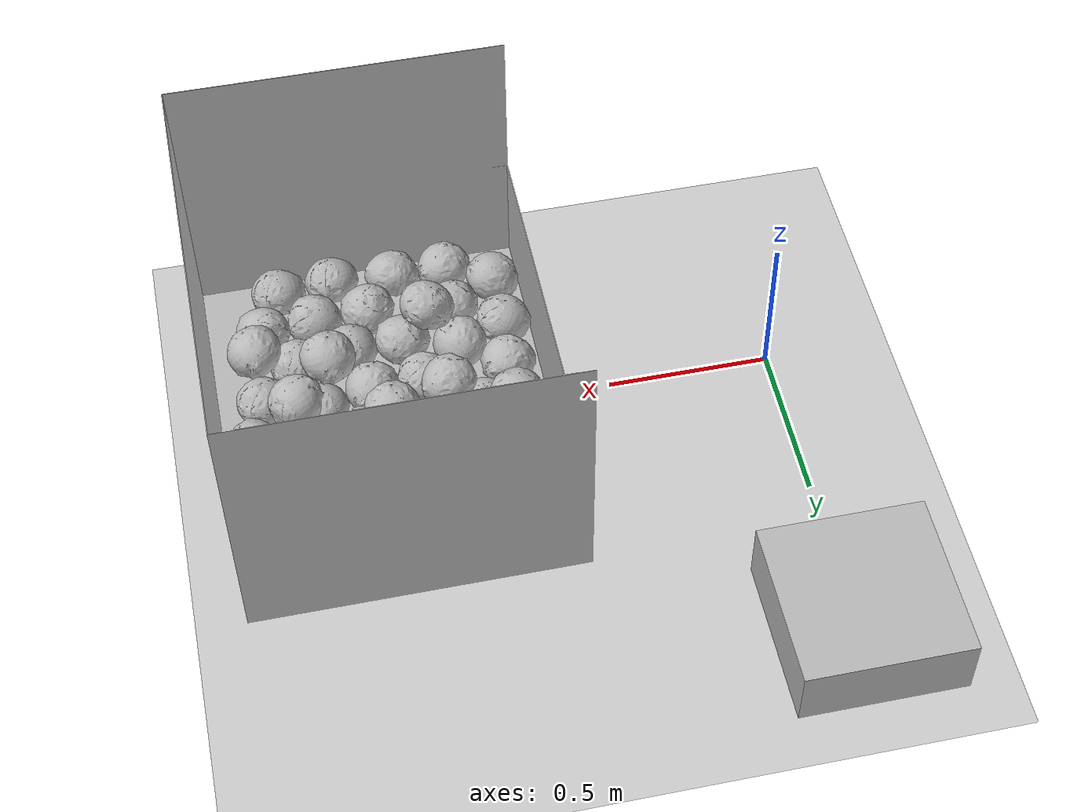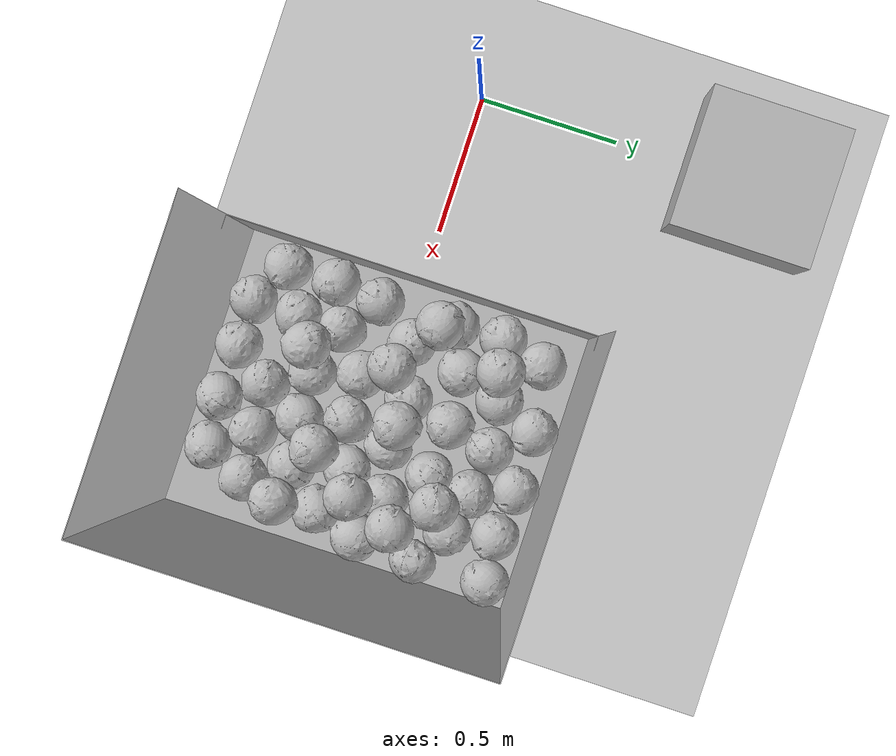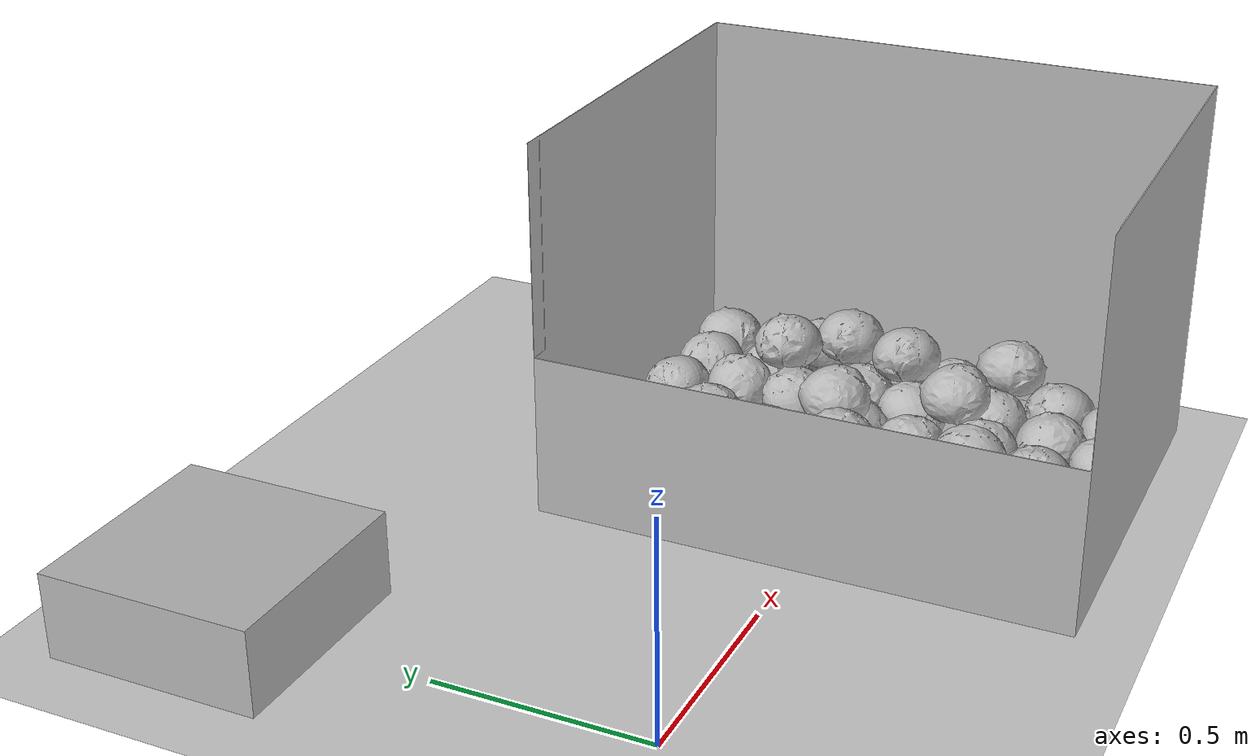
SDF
<sdf version="1.6">
 <world name="default">
  <model name="ground_plane">
   <static>1</static>
   <link name="link">
    <collision name="collision">
     <geometry><plane><normal>0 0 1</normal><size>100 100</size></plane></geometry>
     <surface>
      <contact><collide_bitmask>65535</collide_bitmask></contact>
      <friction><ode><mu>100</mu><mu2>50</mu2></ode></friction>
     </surface>
    </collision>
    <visual name="visual">
     <cast_shadows>0</cast_shadows>
     <geometry><plane><normal>0 0 1</normal><size>100 100</size></plane></geometry>
     <material>
      <script><uri>file://media/materials/scripts/gazebo.material</uri><name>Gazebo/Grey</name></script>
     </material>
    </visual>
   </link>
  </model>
  <light name="sun" type="directional">
   <pose>0 0 10 0 -0 0</pose>
   <diffuse>0.8 0.8 0.8 1</diffuse>
   <specular>0.2 0.2 0.2 1</specular>
   <attenuation>
    <range>1000</range>
    <constant>0.9</constant>
    <linear>0.01</linear>
    <quadratic>0.001</quadratic>
   </attenuation>
   <direction>-0.5 0.1 -0.9</direction>
  </light>
  <model name="mytable">
   <static>1</static>
   <link name="link">
    <inertial>
     <mass>1</mass>
     <inertia><ixx>0.083</ixx><ixy>0</ixy><ixz>0</ixz><iyy>0.083</iyy><iyz>0</iyz><izz>0.083</izz></inertia>
    </inertial>
    <collision name="collision"><geometry><box><size>0.5 0.5 0.2</size></box></geometry></collision>
    <visual name="visual"><geometry><box><size>0.5 0.5 0.2</size></box></geometry></visual>
   </link>
   <pose>-0 1 0.1 0 -0 0</pose>
  </model>
  <model name="container">
   <static>1</static>
   <link name="link">
    <inertial>
     <mass>1</mass>
     <inertia><ixx>1</ixx><ixy>0</ixy><ixz>0</ixz><iyy>1</iyy><iyz>0</iyz><izz>1</izz></inertia>
    </inertial>
    <collision name="collision">
     <geometry>
      <mesh>
       <scale>0.001 0.001 0.001</scale>
       <uri>model://big_container_open/big_container_open_meshlab.dae</uri>
      </mesh>
     </geometry>
     <surface>
      <friction><ode><mu>0.6</mu><mu2>0.6</mu2></ode></friction>
      <contact><ode><max_vel>0.1</max_vel><min_depth>0.0001</min_depth></ode></contact>
     </surface>
    </collision>
    <visual name="visual">
     <geometry>
      <mesh>
       <scale>0.001 0.001 0.001</scale>
       <uri>model://big_container_open/big_container_open_meshlab.dae</uri>
      </mesh>
     </geometry>
    </visual>
   </link>
   <pose>1.2 0 0 0 0 -1.57</pose>
  </model>
  <gravity>0 0 -9.8</gravity>
  <magnetic_field>6e-06 2.3e-05 -4.2e-05</magnetic_field>
  <atmosphere type="adiabatic"/>
  <physics name="default_physics" default="0" type="ode">
   <max_step_size>0.001</max_step_size>
   <real_time_factor>1</real_time_factor>
   <real_time_update_rate>1000</real_time_update_rate>
  </physics>
  <scene><ambient>0.4 0.4 0.4 1</ambient><background>0.7 0.7 0.7 1</background><shadows>1</shadows></scene>
  <audio><device>default</device></audio>
  <spherical_coordinates>
   <surface_model>EARTH_WGS84</surface_model>
   <latitude_deg>0</latitude_deg>
   <longitude_deg>0</longitude_deg>
   <elevation>0</elevation>
   <heading_deg>0</heading_deg>
  </spherical_coordinates>
  <model name="cabbage_1">
   <link name="link">
    <inertial>
     <mass>1</mass>
     <inertia><ixx>0.001</ixx><ixy>0</ixy><ixz>0</ixz><iyy>0.001</iyy><iyz>0</iyz><izz>0.001</izz></inertia>
    </inertial>
    <collision name="collision">
     <geometry>
      <mesh><scale>0.0015 0.0015 0.0015</scale><uri>model://cabbage/cabbage_single.dae</uri></mesh>
     </geometry>
     <surface>
      <friction><ode><mu>0.8</mu><mu2>0.8</mu2></ode></friction>
      <contact><ode><max_vel>0.1</max_vel><min_depth>0.0001</min_depth></ode></contact>
     </surface>
    </collision>
    <visual name="visual">
     <geometry>
      <mesh><scale>0.0015 0.0015 0.0015</scale><uri>model://cabbage/cabbage_single.dae</uri></mesh>
     </geometry>
     <material><script><uri>model://cabbage/texture.material</uri><name>CabbageTexture</name></script></material>
    </visual>
   </link>
   <pose>1.56645 -0.082913 0.008326 1.79305 0.062438 -0.553552</pose>
  </model>
  <model name="cabbage_2">
   <link name="link">
    <inertial>
     <mass>1</mass>
     <inertia><ixx>0.001</ixx><ixy>0</ixy><ixz>0</ixz><iyy>0.001</iyy><iyz>0</iyz><izz>0.001</izz></inertia>
    </inertial>
    <collision name="collision">
     <geometry>
      <mesh><scale>0.0015 0.0015 0.0015</scale><uri>model://cabbage/cabbage_single.dae</uri></mesh>
     </geometry>
     <surface>
      <friction><ode><mu>0.8</mu><mu2>0.8</mu2></ode></friction>
      <contact><ode><max_vel>0.1</max_vel><min_depth>0.0001</min_depth></ode></contact>
     </surface>
    </collision>
    <visual name="visual">
     <geometry>
      <mesh><scale>0.0015 0.0015 0.0015</scale><uri>model://cabbage/cabbage_single.dae</uri></mesh>
     </geometry>
     <material><script><uri>model://cabbage/texture.material</uri><name>CabbageTexture</name></script></material>
    </visual>
   </link>
   <pose>0.838938 0.490247 0.005149 1.47234 -0.122549 -1.18731</pose>
  </model>
  <model name="cabbage_3">
   <link name="link">
    <inertial>
     <mass>1</mass>
     <inertia><ixx>0.001</ixx><ixy>0</ixy><ixz>0</ixz><iyy>0.001</iyy><iyz>0</iyz><izz>0.001</izz></inertia>
    </inertial>
    <collision name="collision">
     <geometry>
      <mesh><scale>0.0015 0.0015 0.0015</scale><uri>model://cabbage/cabbage_single.dae</uri></mesh>
     </geometry>
     <surface>
      <friction><ode><mu>0.8</mu><mu2>0.8</mu2></ode></friction>
      <contact><ode><max_vel>0.1</max_vel><min_depth>0.0001</min_depth></ode></contact>
     </surface>
    </collision>
    <visual name="visual">
     <geometry>
      <mesh><scale>0.0015 0.0015 0.0015</scale><uri>model://cabbage/cabbage_single.dae</uri></mesh>
     </geometry>
     <material><script><uri>model://cabbage/texture.material</uri><name>CabbageTexture</name></script></material>
    </visual>
   </link>
   <pose>1.27326 0.078551 0.004448 1.51816 -0.060117 0.982329</pose>
  </model>
  <model name="cabbage_4">
   <link name="link">
    <inertial>
     <mass>1</mass>
     <inertia><ixx>0.001</ixx><ixy>0</ixy><ixz>0</ixz><iyy>0.001</iyy><iyz>0</iyz><izz>0.001</izz></inertia>
    </inertial>
    <collision name="collision">
     <geometry>
      <mesh><scale>0.0015 0.0015 0.0015</scale><uri>model://cabbage/cabbage_single.dae</uri></mesh>
     </geometry>
     <surface>
      <friction><ode><mu>0.8</mu><mu2>0.8</mu2></ode></friction>
      <contact><ode><max_vel>0.1</max_vel><min_depth>0.0001</min_depth></ode></contact>
     </surface>
    </collision>
    <visual name="visual">
     <geometry>
      <mesh><scale>0.0015 0.0015 0.0015</scale><uri>model://cabbage/cabbage_single.dae</uri></mesh>
     </geometry>
     <material><script><uri>model://cabbage/texture.material</uri><name>CabbageTexture</name></script></material>
    </visual>
   </link>
   <pose>0.810137 0.168603 0.006687 1.66431 -0.085139 -0.765313</pose>
  </model>
  <model name="cabbage_5">
   <link name="link">
    <inertial>
     <mass>1</mass>
     <inertia><ixx>0.001</ixx><ixy>0</ixy><ixz>0</ixz><iyy>0.001</iyy><iyz>0</iyz><izz>0.001</izz></inertia>
    </inertial>
    <collision name="collision">
     <geometry>
      <mesh><scale>0.0015 0.0015 0.0015</scale><uri>model://cabbage/cabbage_single.dae</uri></mesh>
     </geometry>
     <surface>
      <friction><ode><mu>0.8</mu><mu2>0.8</mu2></ode></friction>
      <contact><ode><max_vel>0.1</max_vel><min_depth>0.0001</min_depth></ode></contact>
     </surface>
    </collision>
    <visual name="visual">
     <geometry>
      <mesh><scale>0.0015 0.0015 0.0015</scale><uri>model://cabbage/cabbage_single.dae</uri></mesh>
     </geometry>
     <material><script><uri>model://cabbage/texture.material</uri><name>CabbageTexture</name></script></material>
    </visual>
   </link>
   <pose>1.37315 -0.408369 0.011233 1.51048 -0.306398 -1.19735</pose>
  </model>
  <model name="cabbage_6">
   <link name="link">
    <inertial>
     <mass>1</mass>
     <inertia><ixx>0.001</ixx><ixy>0</ixy><ixz>0</ixz><iyy>0.001</iyy><iyz>0</iyz><izz>0.001</izz></inertia>
    </inertial>
    <collision name="collision">
     <geometry>
      <mesh><scale>0.0015 0.0015 0.0015</scale><uri>model://cabbage/cabbage_single.dae</uri></mesh>
     </geometry>
     <surface>
      <friction><ode><mu>0.8</mu><mu2>0.8</mu2></ode></friction>
      <contact><ode><max_vel>0.1</max_vel><min_depth>0.0001</min_depth></ode></contact>
     </surface>
    </collision>
    <visual name="visual">
     <geometry>
      <mesh><scale>0.0015 0.0015 0.0015</scale><uri>model://cabbage/cabbage_single.dae</uri></mesh>
     </geometry>
     <material><script><uri>model://cabbage/texture.material</uri><name>CabbageTexture</name></script></material>
    </visual>
   </link>
   <pose>1.38268 -0.017162 0.012705 1.90545 0.120917 0.062827</pose>
  </model>
  <model name="cabbage_7">
   <link name="link">
    <inertial>
     <mass>1</mass>
     <inertia><ixx>0.001</ixx><ixy>0</ixy><ixz>0</ixz><iyy>0.001</iyy><iyz>0</iyz><izz>0.001</izz></inertia>
    </inertial>
    <collision name="collision">
     <geometry>
      <mesh><scale>0.0015 0.0015 0.0015</scale><uri>model://cabbage/cabbage_single.dae</uri></mesh>
     </geometry>
     <surface>
      <friction><ode><mu>0.8</mu><mu2>0.8</mu2></ode></friction>
      <contact><ode><max_vel>0.1</max_vel><min_depth>0.0001</min_depth></ode></contact>
     </surface>
    </collision>
    <visual name="visual">
     <geometry>
      <mesh><scale>0.0015 0.0015 0.0015</scale><uri>model://cabbage/cabbage_single.dae</uri></mesh>
     </geometry>
     <material><script><uri>model://cabbage/texture.material</uri><name>CabbageTexture</name></script></material>
    </visual>
   </link>
   <pose>1.59172 0.056704 0.012336 1.63739 0.297259 0.645975</pose>
  </model>
  <model name="cabbage_8">
   <link name="link">
    <inertial>
     <mass>1</mass>
     <inertia><ixx>0.001</ixx><ixy>0</ixy><ixz>0</ixz><iyy>0.001</iyy><iyz>0</iyz><izz>0.001</izz></inertia>
    </inertial>
    <collision name="collision">
     <geometry>
      <mesh><scale>0.0015 0.0015 0.0015</scale><uri>model://cabbage/cabbage_single.dae</uri></mesh>
     </geometry>
     <surface>
      <friction><ode><mu>0.8</mu><mu2>0.8</mu2></ode></friction>
      <contact><ode><max_vel>0.1</max_vel><min_depth>0.0001</min_depth></ode></contact>
     </surface>
    </collision>
    <visual name="visual">
     <geometry>
      <mesh><scale>0.0015 0.0015 0.0015</scale><uri>model://cabbage/cabbage_single.dae</uri></mesh>
     </geometry>
     <material><script><uri>model://cabbage/texture.material</uri><name>CabbageTexture</name></script></material>
    </visual>
   </link>
   <pose>1.08687 0.097042 0.005726 1.43544 -0.127997 2.98147</pose>
  </model>
  <model name="cabbage_9">
   <link name="link">
    <inertial>
     <mass>1</mass>
     <inertia><ixx>0.001</ixx><ixy>0</ixy><ixz>0</ixz><iyy>0.001</iyy><iyz>0</iyz><izz>0.001</izz></inertia>
    </inertial>
    <collision name="collision">
     <geometry>
      <mesh><scale>0.0015 0.0015 0.0015</scale><uri>model://cabbage/cabbage_single.dae</uri></mesh>
     </geometry>
     <surface>
      <friction><ode><mu>0.8</mu><mu2>0.8</mu2></ode></friction>
      <contact><ode><max_vel>0.1</max_vel><min_depth>0.0001</min_depth></ode></contact>
     </surface>
    </collision>
    <visual name="visual">
     <geometry>
      <mesh><scale>0.0015 0.0015 0.0015</scale><uri>model://cabbage/cabbage_single.dae</uri></mesh>
     </geometry>
     <material><script><uri>model://cabbage/texture.material</uri><name>CabbageTexture</name></script></material>
    </visual>
   </link>
   <pose>0.910525 -0.222832 0.016099 1.4721 -0.470082 -2.46178</pose>
  </model>
  <model name="cabbage_10">
   <link name="link">
    <inertial>
     <mass>1</mass>
     <inertia><ixx>0.001</ixx><ixy>0</ixy><ixz>0</ixz><iyy>0.001</iyy><iyz>0</iyz><izz>0.001</izz></inertia>
    </inertial>
    <collision name="collision">
     <geometry>
      <mesh><scale>0.0015 0.0015 0.0015</scale><uri>model://cabbage/cabbage_single.dae</uri></mesh>
     </geometry>
     <surface>
      <friction><ode><mu>0.8</mu><mu2>0.8</mu2></ode></friction>
      <contact><ode><max_vel>0.1</max_vel><min_depth>0.0001</min_depth></ode></contact>
     </surface>
    </collision>
    <visual name="visual">
     <geometry>
      <mesh><scale>0.0015 0.0015 0.0015</scale><uri>model://cabbage/cabbage_single.dae</uri></mesh>
     </geometry>
     <material><script><uri>model://cabbage/texture.material</uri><name>CabbageTexture</name></script></material>
    </visual>
   </link>
   <pose>1.17425 -0.411081 0.013846 1.92232 0.141419 1.61423</pose>
  </model>
  <model name="cabbage_11">
   <link name="link">
    <inertial>
     <mass>1</mass>
     <inertia><ixx>0.001</ixx><ixy>0</ixy><ixz>0</ixz><iyy>0.001</iyy><iyz>0</iyz><izz>0.001</izz></inertia>
    </inertial>
    <collision name="collision">
     <geometry>
      <mesh><scale>0.0015 0.0015 0.0015</scale><uri>model://cabbage/cabbage_single.dae</uri></mesh>
     </geometry>
     <surface>
      <friction><ode><mu>0.8</mu><mu2>0.8</mu2></ode></friction>
      <contact><ode><max_vel>0.1</max_vel><min_depth>0.0001</min_depth></ode></contact>
     </surface>
    </collision>
    <visual name="visual">
     <geometry>
      <mesh><scale>0.0015 0.0015 0.0015</scale><uri>model://cabbage/cabbage_single.dae</uri></mesh>
     </geometry>
     <material><script><uri>model://cabbage/texture.material</uri><name>CabbageTexture</name></script></material>
    </visual>
   </link>
   <pose>1.45146 0.113368 0.003622 1.57171 0.00319 -2.36476</pose>
  </model>
  <model name="cabbage_12">
   <link name="link">
    <inertial>
     <mass>1</mass>
     <inertia><ixx>0.001</ixx><ixy>0</ixy><ixz>0</ixz><iyy>0.001</iyy><iyz>0</iyz><izz>0.001</izz></inertia>
    </inertial>
    <collision name="collision">
     <geometry>
      <mesh><scale>0.0015 0.0015 0.0015</scale><uri>model://cabbage/cabbage_single.dae</uri></mesh>
     </geometry>
     <surface>
      <friction><ode><mu>0.8</mu><mu2>0.8</mu2></ode></friction>
      <contact><ode><max_vel>0.1</max_vel><min_depth>0.0001</min_depth></ode></contact>
     </surface>
    </collision>
    <visual name="visual">
     <geometry>
      <mesh><scale>0.0015 0.0015 0.0015</scale><uri>model://cabbage/cabbage_single.dae</uri></mesh>
     </geometry>
     <material><script><uri>model://cabbage/texture.material</uri><name>CabbageTexture</name></script></material>
    </visual>
   </link>
   <pose>1.03998 -0.28016 0.118749 1.38305 -0.286936 0.92174</pose>
  </model>
  <model name="cabbage_13">
   <link name="link">
    <inertial>
     <mass>1</mass>
     <inertia><ixx>0.001</ixx><ixy>0</ixy><ixz>0</ixz><iyy>0.001</iyy><iyz>0</iyz><izz>0.001</izz></inertia>
    </inertial>
    <collision name="collision">
     <geometry>
      <mesh><scale>0.0015 0.0015 0.0015</scale><uri>model://cabbage/cabbage_single.dae</uri></mesh>
     </geometry>
     <surface>
      <friction><ode><mu>0.8</mu><mu2>0.8</mu2></ode></friction>
      <contact><ode><max_vel>0.1</max_vel><min_depth>0.0001</min_depth></ode></contact>
     </surface>
    </collision>
    <visual name="visual">
     <geometry>
      <mesh><scale>0.0015 0.0015 0.0015</scale><uri>model://cabbage/cabbage_single.dae</uri></mesh>
     </geometry>
     <material><script><uri>model://cabbage/texture.material</uri><name>CabbageTexture</name></script></material>
    </visual>
   </link>
   <pose>1.00117 0.393056 0.004015 1.54193 -0.012475 2.44082</pose>
  </model>
  <model name="cabbage_14">
   <link name="link">
    <inertial>
     <mass>1</mass>
     <inertia><ixx>0.001</ixx><ixy>0</ixy><ixz>0</ixz><iyy>0.001</iyy><iyz>0</iyz><izz>0.001</izz></inertia>
    </inertial>
    <collision name="collision">
     <geometry>
      <mesh><scale>0.0015 0.0015 0.0015</scale><uri>model://cabbage/cabbage_single.dae</uri></mesh>
     </geometry>
     <surface>
      <friction><ode><mu>0.8</mu><mu2>0.8</mu2></ode></friction>
      <contact><ode><max_vel>0.1</max_vel><min_depth>0.0001</min_depth></ode></contact>
     </surface>
    </collision>
    <visual name="visual">
     <geometry>
      <mesh><scale>0.0015 0.0015 0.0015</scale><uri>model://cabbage/cabbage_single.dae</uri></mesh>
     </geometry>
     <material><script><uri>model://cabbage/texture.material</uri><name>CabbageTexture</name></script></material>
    </visual>
   </link>
   <pose>0.805386 -0.114427 0.005067 1.58857 0.08195 2.9965</pose>
  </model>
  <model name="cabbage_15">
   <link name="link">
    <inertial>
     <mass>1</mass>
     <inertia><ixx>0.001</ixx><ixy>0</ixy><ixz>0</ixz><iyy>0.001</iyy><iyz>0</iyz><izz>0.001</izz></inertia>
    </inertial>
    <collision name="collision">
     <geometry>
      <mesh><scale>0.0015 0.0015 0.0015</scale><uri>model://cabbage/cabbage_single.dae</uri></mesh>
     </geometry>
     <surface>
      <friction><ode><mu>0.8</mu><mu2>0.8</mu2></ode></friction>
      <contact><ode><max_vel>0.1</max_vel><min_depth>0.0001</min_depth></ode></contact>
     </surface>
    </collision>
    <visual name="visual">
     <geometry>
      <mesh><scale>0.0015 0.0015 0.0015</scale><uri>model://cabbage/cabbage_single.dae</uri></mesh>
     </geometry>
     <material><script><uri>model://cabbage/texture.material</uri><name>CabbageTexture</name></script></material>
    </visual>
   </link>
   <pose>1.27875 -0.249448 0.004996 1.58999 -0.051802 -0.159704</pose>
  </model>
  <model name="cabbage_16">
   <link name="link">
    <inertial>
     <mass>1</mass>
     <inertia><ixx>0.001</ixx><ixy>0</ixy><ixz>0</ixz><iyy>0.001</iyy><iyz>0</iyz><izz>0.001</izz></inertia>
    </inertial>
    <collision name="collision">
     <geometry>
      <mesh><scale>0.0015 0.0015 0.0015</scale><uri>model://cabbage/cabbage_single.dae</uri></mesh>
     </geometry>
     <surface>
      <friction><ode><mu>0.8</mu><mu2>0.8</mu2></ode></friction>
      <contact><ode><max_vel>0.1</max_vel><min_depth>0.0001</min_depth></ode></contact>
     </surface>
    </collision>
    <visual name="visual">
     <geometry>
      <mesh><scale>0.0015 0.0015 0.0015</scale><uri>model://cabbage/cabbage_single.dae</uri></mesh>
     </geometry>
     <material><script><uri>model://cabbage/texture.material</uri><name>CabbageTexture</name></script></material>
    </visual>
   </link>
   <pose>1.44064 -0.007221 0.124565 1.12629 0.293234 -0.537433</pose>
  </model>
  <model name="cabbage_17">
   <link name="link">
    <inertial>
     <mass>1</mass>
     <inertia><ixx>0.001</ixx><ixy>0</ixy><ixz>0</ixz><iyy>0.001</iyy><iyz>0</iyz><izz>0.001</izz></inertia>
    </inertial>
    <collision name="collision">
     <geometry>
      <mesh><scale>0.0015 0.0015 0.0015</scale><uri>model://cabbage/cabbage_single.dae</uri></mesh>
     </geometry>
     <surface>
      <friction><ode><mu>0.8</mu><mu2>0.8</mu2></ode></friction>
      <contact><ode><max_vel>0.1</max_vel><min_depth>0.0001</min_depth></ode></contact>
     </surface>
    </collision>
    <visual name="visual">
     <geometry>
      <mesh><scale>0.0015 0.0015 0.0015</scale><uri>model://cabbage/cabbage_single.dae</uri></mesh>
     </geometry>
     <material><script><uri>model://cabbage/texture.material</uri><name>CabbageTexture</name></script></material>
    </visual>
   </link>
   <pose>1.50631 0.171724 0.113177 1.31722 0.269286 -0.634055</pose>
  </model>
  <model name="cabbage_18">
   <link name="link">
    <inertial>
     <mass>1</mass>
     <inertia><ixx>0.001</ixx><ixy>0</ixy><ixz>0</ixz><iyy>0.001</iyy><iyz>0</iyz><izz>0.001</izz></inertia>
    </inertial>
    <collision name="collision">
     <geometry>
      <mesh><scale>0.0015 0.0015 0.0015</scale><uri>model://cabbage/cabbage_single.dae</uri></mesh>
     </geometry>
     <surface>
      <friction><ode><mu>0.8</mu><mu2>0.8</mu2></ode></friction>
      <contact><ode><max_vel>0.1</max_vel><min_depth>0.0001</min_depth></ode></contact>
     </surface>
    </collision>
    <visual name="visual">
     <geometry>
      <mesh><scale>0.0015 0.0015 0.0015</scale><uri>model://cabbage/cabbage_single.dae</uri></mesh>
     </geometry>
     <material><script><uri>model://cabbage/texture.material</uri><name>CabbageTexture</name></script></material>
    </visual>
   </link>
   <pose>0.948133 0.241549 0.003898 1.60377 0.007885 0.089148</pose>
  </model>
  <model name="cabbage_19">
   <link name="link">
    <inertial>
     <mass>1</mass>
     <inertia><ixx>0.001</ixx><ixy>0</ixy><ixz>0</ixz><iyy>0.001</iyy><iyz>0</iyz><izz>0.001</izz></inertia>
    </inertial>
    <collision name="collision">
     <geometry>
      <mesh><scale>0.0015 0.0015 0.0015</scale><uri>model://cabbage/cabbage_single.dae</uri></mesh>
     </geometry>
     <surface>
      <friction><ode><mu>0.8</mu><mu2>0.8</mu2></ode></friction>
      <contact><ode><max_vel>0.1</max_vel><min_depth>0.0001</min_depth></ode></contact>
     </surface>
    </collision>
    <visual name="visual">
     <geometry>
      <mesh><scale>0.0015 0.0015 0.0015</scale><uri>model://cabbage/cabbage_single.dae</uri></mesh>
     </geometry>
     <material><script><uri>model://cabbage/texture.material</uri><name>CabbageTexture</name></script></material>
    </visual>
   </link>
   <pose>0.792016 0.360172 0.012959 1.20901 -0.063196 2.95369</pose>
  </model>
  <model name="cabbage_20">
   <link name="link">
    <inertial>
     <mass>1</mass>
     <inertia><ixx>0.001</ixx><ixy>0</ixy><ixz>0</ixz><iyy>0.001</iyy><iyz>0</iyz><izz>0.001</izz></inertia>
    </inertial>
    <collision name="collision">
     <geometry>
      <mesh><scale>0.0015 0.0015 0.0015</scale><uri>model://cabbage/cabbage_single.dae</uri></mesh>
     </geometry>
     <surface>
      <friction><ode><mu>0.8</mu><mu2>0.8</mu2></ode></friction>
      <contact><ode><max_vel>0.1</max_vel><min_depth>0.0001</min_depth></ode></contact>
     </surface>
    </collision>
    <visual name="visual">
     <geometry>
      <mesh><scale>0.0015 0.0015 0.0015</scale><uri>model://cabbage/cabbage_single.dae</uri></mesh>
     </geometry>
     <material><script><uri>model://cabbage/texture.material</uri><name>CabbageTexture</name></script></material>
    </visual>
   </link>
   <pose>1.28684 -0.512134 0.015914 1.9748 0.164571 -0.192912</pose>
  </model>
  <model name="cabbage_13_clone">
   <link name="link">
    <inertial>
     <mass>1</mass>
     <inertia><ixx>0.001</ixx><ixy>0</ixy><ixz>0</ixz><iyy>0.001</iyy><iyz>0</iyz><izz>0.001</izz></inertia>
    </inertial>
    <collision name="collision">
     <geometry>
      <mesh><scale>0.0015 0.0015 0.0015</scale><uri>model://cabbage/cabbage_single.dae</uri></mesh>
     </geometry>
     <surface>
      <friction><ode><mu>0.8</mu><mu2>0.8</mu2></ode></friction>
      <contact><ode><max_vel>0.1</max_vel><min_depth>0.0001</min_depth></ode></contact>
     </surface>
    </collision>
    <visual name="visual">
     <geometry>
      <mesh><scale>0.0015 0.0015 0.0015</scale><uri>model://cabbage/cabbage_single.dae</uri></mesh>
     </geometry>
     <material><script><uri>model://cabbage/texture.material</uri><name>CabbageTexture</name></script></material>
    </visual>
   </link>
   <pose>1.46807 0.514818 0.009975 1.38136 0.226044 1.99755</pose>
  </model>
  <model name="cabbage_13_clone_0">
   <link name="link">
    <inertial>
     <mass>1</mass>
     <inertia><ixx>0.001</ixx><ixy>0</ixy><ixz>0</ixz><iyy>0.001</iyy><iyz>0</iyz><izz>0.001</izz></inertia>
    </inertial>
    <collision name="collision">
     <geometry>
      <mesh><scale>0.0015 0.0015 0.0015</scale><uri>model://cabbage/cabbage_single.dae</uri></mesh>
     </geometry>
     <surface>
      <friction><ode><mu>0.8</mu><mu2>0.8</mu2></ode></friction>
      <contact><ode><max_vel>0.1</max_vel><min_depth>0.0001</min_depth></ode></contact>
     </surface>
    </collision>
    <visual name="visual">
     <geometry>
      <mesh><scale>0.0015 0.0015 0.0015</scale><uri>model://cabbage/cabbage_single.dae</uri></mesh>
     </geometry>
     <material><script><uri>model://cabbage/texture.material</uri><name>CabbageTexture</name></script></material>
    </visual>
   </link>
   <pose>1.59886 0.534497 0.010938 1.52765 0.326455 0.307467</pose>
  </model>
  <model name="cabbage_13_clone_1">
   <link name="link">
    <inertial>
     <mass>1</mass>
     <inertia><ixx>0.001</ixx><ixy>0</ixy><ixz>0</ixz><iyy>0.001</iyy><iyz>0</iyz><izz>0.001</izz></inertia>
    </inertial>
    <collision name="collision">
     <geometry>
      <mesh><scale>0.0015 0.0015 0.0015</scale><uri>model://cabbage/cabbage_single.dae</uri></mesh>
     </geometry>
     <surface>
      <friction><ode><mu>0.8</mu><mu2>0.8</mu2></ode></friction>
      <contact><ode><max_vel>0.1</max_vel><min_depth>0.0001</min_depth></ode></contact>
     </surface>
    </collision>
    <visual name="visual">
     <geometry>
      <mesh><scale>0.0015 0.0015 0.0015</scale><uri>model://cabbage/cabbage_single.dae</uri></mesh>
     </geometry>
     <material><script><uri>model://cabbage/texture.material</uri><name>CabbageTexture</name></script></material>
    </visual>
   </link>
   <pose>0.810536 -0.46166 0.016668 1.28622 0.363 2.18698</pose>
  </model>
  <model name="cabbage_13_clone_2">
   <link name="link">
    <inertial>
     <mass>1</mass>
     <inertia><ixx>0.001</ixx><ixy>0</ixy><ixz>0</ixz><iyy>0.001</iyy><iyz>0</iyz><izz>0.001</izz></inertia>
    </inertial>
    <collision name="collision">
     <geometry>
      <mesh><scale>0.0015 0.0015 0.0015</scale><uri>model://cabbage/cabbage_single.dae</uri></mesh>
     </geometry>
     <surface>
      <friction><ode><mu>0.8</mu><mu2>0.8</mu2></ode></friction>
      <contact><ode><max_vel>0.1</max_vel><min_depth>0.0001</min_depth></ode></contact>
     </surface>
    </collision>
    <visual name="visual">
     <geometry>
      <mesh><scale>0.0015 0.0015 0.0015</scale><uri>model://cabbage/cabbage_single.dae</uri></mesh>
     </geometry>
     <material><script><uri>model://cabbage/texture.material</uri><name>CabbageTexture</name></script></material>
    </visual>
   </link>
   <pose>0.987841 0.016608 0.109103 1.54007 -0.285029 2.66066</pose>
  </model>
  <model name="cabbage_13_clone_3">
   <link name="link">
    <inertial>
     <mass>1</mass>
     <inertia><ixx>0.001</ixx><ixy>0</ixy><ixz>0</ixz><iyy>0.001</iyy><iyz>0</iyz><izz>0.001</izz></inertia>
    </inertial>
    <collision name="collision">
     <geometry>
      <mesh><scale>0.0015 0.0015 0.0015</scale><uri>model://cabbage/cabbage_single.dae</uri></mesh>
     </geometry>
     <surface>
      <friction><ode><mu>0.8</mu><mu2>0.8</mu2></ode></friction>
      <contact><ode><max_vel>0.1</max_vel><min_depth>0.0001</min_depth></ode></contact>
     </surface>
    </collision>
    <visual name="visual">
     <geometry>
      <mesh><scale>0.0015 0.0015 0.0015</scale><uri>model://cabbage/cabbage_single.dae</uri></mesh>
     </geometry>
     <material><script><uri>model://cabbage/texture.material</uri><name>CabbageTexture</name></script></material>
    </visual>
   </link>
   <pose>1.10397 -0.513657 0.011022 1.2453 -0.151714 2.31901</pose>
  </model>
  <model name="cabbage_13_clone_4">
   <link name="link">
    <inertial>
     <mass>1</mass>
     <inertia><ixx>0.001</ixx><ixy>0</ixy><ixz>0</ixz><iyy>0.001</iyy><iyz>0</iyz><izz>0.001</izz></inertia>
    </inertial>
    <collision name="collision">
     <geometry>
      <mesh><scale>0.0015 0.0015 0.0015</scale><uri>model://cabbage/cabbage_single.dae</uri></mesh>
     </geometry>
     <surface>
      <friction><ode><mu>0.8</mu><mu2>0.8</mu2></ode></friction>
      <contact><ode><max_vel>0.1</max_vel><min_depth>0.0001</min_depth></ode></contact>
     </surface>
    </collision>
    <visual name="visual">
     <geometry>
      <mesh><scale>0.0015 0.0015 0.0015</scale><uri>model://cabbage/cabbage_single.dae</uri></mesh>
     </geometry>
     <material><script><uri>model://cabbage/texture.material</uri><name>CabbageTexture</name></script></material>
    </visual>
   </link>
   <pose>1.10769 -0.26074 0.004318 1.52971 0.015879 1.58381</pose>
  </model>
  <model name="cabbage_13_clone_5">
   <link name="link">
    <inertial>
     <mass>1</mass>
     <inertia><ixx>0.001</ixx><ixy>0</ixy><ixz>0</ixz><iyy>0.001</iyy><iyz>0</iyz><izz>0.001</izz></inertia>
    </inertial>
    <collision name="collision">
     <geometry>
      <mesh><scale>0.0015 0.0015 0.0015</scale><uri>model://cabbage/cabbage_single.dae</uri></mesh>
     </geometry>
     <surface>
      <friction><ode><mu>0.8</mu><mu2>0.8</mu2></ode></friction>
      <contact><ode><max_vel>0.1</max_vel><min_depth>0.0001</min_depth></ode></contact>
     </surface>
    </collision>
    <visual name="visual">
     <geometry>
      <mesh><scale>0.0015 0.0015 0.0015</scale><uri>model://cabbage/cabbage_single.dae</uri></mesh>
     </geometry>
     <material><script><uri>model://cabbage/texture.material</uri><name>CabbageTexture</name></script></material>
    </visual>
   </link>
   <pose>0.814539 0.143601 0.137768 1.50707 0.329322 -1.44668</pose>
  </model>
  <model name="cabbage_13_clone_6">
   <link name="link">
    <inertial>
     <mass>1</mass>
     <inertia><ixx>0.001</ixx><ixy>0</ixy><ixz>0</ixz><iyy>0.001</iyy><iyz>0</iyz><izz>0.001</izz></inertia>
    </inertial>
    <collision name="collision">
     <geometry>
      <mesh><scale>0.0015 0.0015 0.0015</scale><uri>model://cabbage/cabbage_single.dae</uri></mesh>
     </geometry>
     <surface>
      <friction><ode><mu>0.8</mu><mu2>0.8</mu2></ode></friction>
      <contact><ode><max_vel>0.1</max_vel><min_depth>0.0001</min_depth></ode></contact>
     </surface>
    </collision>
    <visual name="visual">
     <geometry>
      <mesh><scale>0.0015 0.0015 0.0015</scale><uri>model://cabbage/cabbage_single.dae</uri></mesh>
     </geometry>
     <material><script><uri>model://cabbage/texture.material</uri><name>CabbageTexture</name></script></material>
    </visual>
   </link>
   <pose>1.15328 0.397316 0.017008 1.94108 -0.254864 2.72809</pose>
  </model>
  <model name="cabbage_13_clone_7">
   <link name="link">
    <inertial>
     <mass>1</mass>
     <inertia><ixx>0.001</ixx><ixy>0</ixy><ixz>0</ixz><iyy>0.001</iyy><iyz>0</iyz><izz>0.001</izz></inertia>
    </inertial>
    <collision name="collision">
     <geometry>
      <mesh><scale>0.0015 0.0015 0.0015</scale><uri>model://cabbage/cabbage_single.dae</uri></mesh>
     </geometry>
     <surface>
      <friction><ode><mu>0.8</mu><mu2>0.8</mu2></ode></friction>
      <contact><ode><max_vel>0.1</max_vel><min_depth>0.0001</min_depth></ode></contact>
     </surface>
    </collision>
    <visual name="visual">
     <geometry>
      <mesh><scale>0.0015 0.0015 0.0015</scale><uri>model://cabbage/cabbage_single.dae</uri></mesh>
     </geometry>
     <material><script><uri>model://cabbage/texture.material</uri><name>CabbageTexture</name></script></material>
    </visual>
   </link>
   <pose>1.06594 0.51487 0.017678 1.65197 0.442906 1.75409</pose>
  </model>
  <model name="cabbage_13_clone_8">
   <link name="link">
    <inertial>
     <mass>1</mass>
     <inertia><ixx>0.001</ixx><ixy>0</ixy><ixz>0</ixz><iyy>0.001</iyy><iyz>0</iyz><izz>0.001</izz></inertia>
    </inertial>
    <collision name="collision">
     <geometry>
      <mesh><scale>0.0015 0.0015 0.0015</scale><uri>model://cabbage/cabbage_single.dae</uri></mesh>
     </geometry>
     <surface>
      <friction><ode><mu>0.8</mu><mu2>0.8</mu2></ode></friction>
      <contact><ode><max_vel>0.1</max_vel><min_depth>0.0001</min_depth></ode></contact>
     </surface>
    </collision>
    <visual name="visual">
     <geometry>
      <mesh><scale>0.0015 0.0015 0.0015</scale><uri>model://cabbage/cabbage_single.dae</uri></mesh>
     </geometry>
     <material><script><uri>model://cabbage/texture.material</uri><name>CabbageTexture</name></script></material>
    </visual>
   </link>
   <pose>1.28367 0.510745 0.021078 1.65935 0.531718 1.94574</pose>
  </model>
  <model name="cabbage_13_clone_9">
   <link name="link">
    <inertial>
     <mass>1</mass>
     <inertia><ixx>0.001</ixx><ixy>0</ixy><ixz>0</ixz><iyy>0.001</iyy><iyz>0</iyz><izz>0.001</izz></inertia>
    </inertial>
    <collision name="collision">
     <geometry>
      <mesh><scale>0.0015 0.0015 0.0015</scale><uri>model://cabbage/cabbage_single.dae</uri></mesh>
     </geometry>
     <surface>
      <friction><ode><mu>0.8</mu><mu2>0.8</mu2></ode></friction>
      <contact><ode><max_vel>0.1</max_vel><min_depth>0.0001</min_depth></ode></contact>
     </surface>
    </collision>
    <visual name="visual">
     <geometry>
      <mesh><scale>0.0015 0.0015 0.0015</scale><uri>model://cabbage/cabbage_single.dae</uri></mesh>
     </geometry>
     <material><script><uri>model://cabbage/texture.material</uri><name>CabbageTexture</name></script></material>
    </visual>
   </link>
   <pose>0.890793 0.050825 0.00842 1.79722 -0.069742 1.07537</pose>
  </model>
  <model name="cabbage_13_clone_10">
   <link name="link">
    <inertial>
     <mass>1</mass>
     <inertia><ixx>0.001</ixx><ixy>0</ixy><ixz>0</ixz><iyy>0.001</iyy><iyz>0</iyz><izz>0.001</izz></inertia>
    </inertial>
    <collision name="collision">
     <geometry>
      <mesh><scale>0.0015 0.0015 0.0015</scale><uri>model://cabbage/cabbage_single.dae</uri></mesh>
     </geometry>
     <surface>
      <friction><ode><mu>0.8</mu><mu2>0.8</mu2></ode></friction>
      <contact><ode><max_vel>0.1</max_vel><min_depth>0.0001</min_depth></ode></contact>
     </surface>
    </collision>
    <visual name="visual">
     <geometry>
      <mesh><scale>0.0015 0.0015 0.0015</scale><uri>model://cabbage/cabbage_single.dae</uri></mesh>
     </geometry>
     <material><script><uri>model://cabbage/texture.material</uri><name>CabbageTexture</name></script></material>
    </visual>
   </link>
   <pose>1.1937 0.086327 0.120082 1.63424 0.049026 -2.13431</pose>
  </model>
  <model name="cabbage_13_clone_11">
   <link name="link">
    <inertial>
     <mass>1</mass>
     <inertia><ixx>0.001</ixx><ixy>0</ixy><ixz>0</ixz><iyy>0.001</iyy><iyz>0</iyz><izz>0.001</izz></inertia>
    </inertial>
    <collision name="collision">
     <geometry>
      <mesh><scale>0.0015 0.0015 0.0015</scale><uri>model://cabbage/cabbage_single.dae</uri></mesh>
     </geometry>
     <surface>
      <friction><ode><mu>0.8</mu><mu2>0.8</mu2></ode></friction>
      <contact><ode><max_vel>0.1</max_vel><min_depth>0.0001</min_depth></ode></contact>
     </surface>
    </collision>
    <visual name="visual">
     <geometry>
      <mesh><scale>0.0015 0.0015 0.0015</scale><uri>model://cabbage/cabbage_single.dae</uri></mesh>
     </geometry>
     <material><script><uri>model://cabbage/texture.material</uri><name>CabbageTexture</name></script></material>
    </visual>
   </link>
   <pose>0.928054 -0.34629 0.012066 1.45287 -0.360316 1.93956</pose>
  </model>
  <model name="cabbage_13_clone_12">
   <link name="link">
    <inertial>
     <mass>1</mass>
     <inertia><ixx>0.001</ixx><ixy>0</ixy><ixz>0</ixz><iyy>0.001</iyy><iyz>0</iyz><izz>0.001</izz></inertia>
    </inertial>
    <collision name="collision">
     <geometry>
      <mesh><scale>0.0015 0.0015 0.0015</scale><uri>model://cabbage/cabbage_single.dae</uri></mesh>
     </geometry>
     <surface>
      <friction><ode><mu>0.8</mu><mu2>0.8</mu2></ode></friction>
      <contact><ode><max_vel>0.1</max_vel><min_depth>0.0001</min_depth></ode></contact>
     </surface>
    </collision>
    <visual name="visual">
     <geometry>
      <mesh><scale>0.0015 0.0015 0.0015</scale><uri>model://cabbage/cabbage_single.dae</uri></mesh>
     </geometry>
     <material><script><uri>model://cabbage/texture.material</uri><name>CabbageTexture</name></script></material>
    </visual>
   </link>
   <pose>1.50994 -0.381082 0.016345 1.8477 0.26799 1.35579</pose>
  </model>
  <model name="cabbage_13_clone_13">
   <link name="link">
    <inertial>
     <mass>1</mass>
     <inertia><ixx>0.001</ixx><ixy>0</ixy><ixz>0</ixz><iyy>0.001</iyy><iyz>0</iyz><izz>0.001</izz></inertia>
    </inertial>
    <collision name="collision">
     <geometry>
      <mesh><scale>0.0015 0.0015 0.0015</scale><uri>model://cabbage/cabbage_single.dae</uri></mesh>
     </geometry>
     <surface>
      <friction><ode><mu>0.8</mu><mu2>0.8</mu2></ode></friction>
      <contact><ode><max_vel>0.1</max_vel><min_depth>0.0001</min_depth></ode></contact>
     </surface>
    </collision>
    <visual name="visual">
     <geometry>
      <mesh><scale>0.0015 0.0015 0.0015</scale><uri>model://cabbage/cabbage_single.dae</uri></mesh>
     </geometry>
     <material><script><uri>model://cabbage/texture.material</uri><name>CabbageTexture</name></script></material>
    </visual>
   </link>
   <pose>0.90563 0.367847 0.113896 1.512 -0.012475 2.21987</pose>
  </model>
  <model name="cabbage_17_clone">
   <link name="link">
    <inertial>
     <mass>1</mass>
     <inertia><ixx>0.001</ixx><ixy>0</ixy><ixz>0</ixz><iyy>0.001</iyy><iyz>0</iyz><izz>0.001</izz></inertia>
    </inertial>
    <collision name="collision">
     <geometry>
      <mesh><scale>0.0015 0.0015 0.0015</scale><uri>model://cabbage/cabbage_single.dae</uri></mesh>
     </geometry>
     <surface>
      <friction><ode><mu>0.8</mu><mu2>0.8</mu2></ode></friction>
      <contact><ode><max_vel>0.1</max_vel><min_depth>0.0001</min_depth></ode></contact>
     </surface>
    </collision>
    <visual name="visual">
     <geometry>
      <mesh><scale>0.0015 0.0015 0.0015</scale><uri>model://cabbage/cabbage_single.dae</uri></mesh>
     </geometry>
     <material><script><uri>model://cabbage/texture.material</uri><name>CabbageTexture</name></script></material>
    </visual>
   </link>
   <pose>1.43861 -0.224514 0.004361 1.53652 0.075206 -0.427377</pose>
  </model>
  <model name="cabbage_17_clone_0">
   <link name="link">
    <inertial>
     <mass>1</mass>
     <inertia><ixx>0.001</ixx><ixy>0</ixy><ixz>0</ixz><iyy>0.001</iyy><iyz>0</iyz><izz>0.001</izz></inertia>
    </inertial>
    <collision name="collision">
     <geometry>
      <mesh><scale>0.0015 0.0015 0.0015</scale><uri>model://cabbage/cabbage_single.dae</uri></mesh>
     </geometry>
     <surface>
      <friction><ode><mu>0.8</mu><mu2>0.8</mu2></ode></friction>
      <contact><ode><max_vel>0.1</max_vel><min_depth>0.0001</min_depth></ode></contact>
     </surface>
    </collision>
    <visual name="visual">
     <geometry>
      <mesh><scale>0.0015 0.0015 0.0015</scale><uri>model://cabbage/cabbage_single.dae</uri></mesh>
     </geometry>
     <material><script><uri>model://cabbage/texture.material</uri><name>CabbageTexture</name></script></material>
    </visual>
   </link>
   <pose>1.482 0.35888 0.005831 1.50715 0.156419 -0.050036</pose>
  </model>
  <model name="cabbage_17_clone_1">
   <link name="link">
    <inertial>
     <mass>1</mass>
     <inertia><ixx>0.001</ixx><ixy>0</ixy><ixz>0</ixz><iyy>0.001</iyy><iyz>0</iyz><izz>0.001</izz></inertia>
    </inertial>
    <collision name="collision">
     <geometry>
      <mesh><scale>0.0015 0.0015 0.0015</scale><uri>model://cabbage/cabbage_single.dae</uri></mesh>
     </geometry>
     <surface>
      <friction><ode><mu>0.8</mu><mu2>0.8</mu2></ode></friction>
      <contact><ode><max_vel>0.1</max_vel><min_depth>0.0001</min_depth></ode></contact>
     </surface>
    </collision>
    <visual name="visual">
     <geometry>
      <mesh><scale>0.0015 0.0015 0.0015</scale><uri>model://cabbage/cabbage_single.dae</uri></mesh>
     </geometry>
     <material><script><uri>model://cabbage/texture.material</uri><name>CabbageTexture</name></script></material>
    </visual>
   </link>
   <pose>0.797533 -0.270091 0.007327 1.75286 0.036036 -1.19177</pose>
  </model>
  <model name="cabbage_17_clone_2">
   <link name="link">
    <inertial>
     <mass>1</mass>
     <inertia><ixx>0.001</ixx><ixy>0</ixy><ixz>0</ixz><iyy>0.001</iyy><iyz>0</iyz><izz>0.001</izz></inertia>
    </inertial>
    <collision name="collision">
     <geometry>
      <mesh><scale>0.0015 0.0015 0.0015</scale><uri>model://cabbage/cabbage_single.dae</uri></mesh>
     </geometry>
     <surface>
      <friction><ode><mu>0.8</mu><mu2>0.8</mu2></ode></friction>
      <contact><ode><max_vel>0.1</max_vel><min_depth>0.0001</min_depth></ode></contact>
     </surface>
    </collision>
    <visual name="visual">
     <geometry>
      <mesh><scale>0.0015 0.0015 0.0015</scale><uri>model://cabbage/cabbage_single.dae</uri></mesh>
     </geometry>
     <material><script><uri>model://cabbage/texture.material</uri><name>CabbageTexture</name></script></material>
    </visual>
   </link>
   <pose>1.3864 0.28272 0.127874 1.93042 0.099956 1.80022</pose>
  </model>
  <model name="cabbage_17_clone_3">
   <link name="link">
    <inertial>
     <mass>1</mass>
     <inertia><ixx>0.001</ixx><ixy>0</ixy><ixz>0</ixz><iyy>0.001</iyy><iyz>0</iyz><izz>0.001</izz></inertia>
    </inertial>
    <collision name="collision">
     <geometry>
      <mesh><scale>0.0015 0.0015 0.0015</scale><uri>model://cabbage/cabbage_single.dae</uri></mesh>
     </geometry>
     <surface>
      <friction><ode><mu>0.8</mu><mu2>0.8</mu2></ode></friction>
      <contact><ode><max_vel>0.1</max_vel><min_depth>0.0001</min_depth></ode></contact>
     </surface>
    </collision>
    <visual name="visual">
     <geometry>
      <mesh><scale>0.0015 0.0015 0.0015</scale><uri>model://cabbage/cabbage_single.dae</uri></mesh>
     </geometry>
     <material><script><uri>model://cabbage/texture.material</uri><name>CabbageTexture</name></script></material>
    </visual>
   </link>
   <pose>1.2125 -0.089146 0.008314 1.4415 -0.255165 -2.87611</pose>
  </model>
  <model name="cabbage_17_clone_4">
   <link name="link">
    <inertial>
     <mass>1</mass>
     <inertia><ixx>0.001</ixx><ixy>0</ixy><ixz>0</ixz><iyy>0.001</iyy><iyz>0</iyz><izz>0.001</izz></inertia>
    </inertial>
    <collision name="collision">
     <geometry>
      <mesh><scale>0.0015 0.0015 0.0015</scale><uri>model://cabbage/cabbage_single.dae</uri></mesh>
     </geometry>
     <surface>
      <friction><ode><mu>0.8</mu><mu2>0.8</mu2></ode></friction>
      <contact><ode><max_vel>0.1</max_vel><min_depth>0.0001</min_depth></ode></contact>
     </surface>
    </collision>
    <visual name="visual">
     <geometry>
      <mesh><scale>0.0015 0.0015 0.0015</scale><uri>model://cabbage/cabbage_single.dae</uri></mesh>
     </geometry>
     <material><script><uri>model://cabbage/texture.material</uri><name>CabbageTexture</name></script></material>
    </visual>
   </link>
   <pose>1.072 -0.095809 0.005419 1.6123 -0.057871 -1.0253</pose>
  </model>
  <model name="cabbage_17_clone_5">
   <link name="link">
    <inertial>
     <mass>1</mass>
     <inertia><ixx>0.001</ixx><ixy>0</ixy><ixz>0</ixz><iyy>0.001</iyy><iyz>0</iyz><izz>0.001</izz></inertia>
    </inertial>
    <collision name="collision">
     <geometry>
      <mesh><scale>0.0015 0.0015 0.0015</scale><uri>model://cabbage/cabbage_single.dae</uri></mesh>
     </geometry>
     <surface>
      <friction><ode><mu>0.8</mu><mu2>0.8</mu2></ode></friction>
      <contact><ode><max_vel>0.1</max_vel><min_depth>0.0001</min_depth></ode></contact>
     </surface>
    </collision>
    <visual name="visual">
     <geometry>
      <mesh><scale>0.0015 0.0015 0.0015</scale><uri>model://cabbage/cabbage_single.dae</uri></mesh>
     </geometry>
     <material><script><uri>model://cabbage/texture.material</uri><name>CabbageTexture</name></script></material>
    </visual>
   </link>
   <pose>1.34859 0.276596 0.037998 2.24381 -0.429678 -0.192137</pose>
  </model>
  <model name="cabbage_17_clone_6">
   <link name="link">
    <inertial>
     <mass>1</mass>
     <inertia><ixx>0.001</ixx><ixy>0</ixy><ixz>0</ixz><iyy>0.001</iyy><iyz>0</iyz><izz>0.001</izz></inertia>
    </inertial>
    <collision name="collision">
     <geometry>
      <mesh><scale>0.0015 0.0015 0.0015</scale><uri>model://cabbage/cabbage_single.dae</uri></mesh>
     </geometry>
     <surface>
      <friction><ode><mu>0.8</mu><mu2>0.8</mu2></ode></friction>
      <contact><ode><max_vel>0.1</max_vel><min_depth>0.0001</min_depth></ode></contact>
     </surface>
    </collision>
    <visual name="visual">
     <geometry>
      <mesh><scale>0.0015 0.0015 0.0015</scale><uri>model://cabbage/cabbage_single.dae</uri></mesh>
     </geometry>
     <material><script><uri>model://cabbage/texture.material</uri><name>CabbageTexture</name></script></material>
    </visual>
   </link>
   <pose>1.13794 0.25366 0.003577 1.56859 0.003571 -2.02269</pose>
  </model>
  <model name="cabbage_17_clone_7">
   <link name="link">
    <inertial>
     <mass>1</mass>
     <inertia><ixx>0.001</ixx><ixy>0</ixy><ixz>0</ixz><iyy>0.001</iyy><iyz>0</iyz><izz>0.001</izz></inertia>
    </inertial>
    <collision name="collision">
     <geometry>
      <mesh><scale>0.0015 0.0015 0.0015</scale><uri>model://cabbage/cabbage_single.dae</uri></mesh>
     </geometry>
     <surface>
      <friction><ode><mu>0.8</mu><mu2>0.8</mu2></ode></friction>
      <contact><ode><max_vel>0.1</max_vel><min_depth>0.0001</min_depth></ode></contact>
     </surface>
    </collision>
    <visual name="visual">
     <geometry>
      <mesh><scale>0.0015 0.0015 0.0015</scale><uri>model://cabbage/cabbage_single.dae</uri></mesh>
     </geometry>
     <material><script><uri>model://cabbage/texture.material</uri><name>CabbageTexture</name></script></material>
    </visual>
   </link>
   <pose>1.46295 -0.499879 0.013908 1.85442 0.191035 -0.43341</pose>
  </model>
  <model name="cabbage_17_clone_8">
   <link name="link">
    <inertial>
     <mass>1</mass>
     <inertia><ixx>0.001</ixx><ixy>0</ixy><ixz>0</ixz><iyy>0.001</iyy><iyz>0</iyz><izz>0.001</izz></inertia>
    </inertial>
    <collision name="collision">
     <geometry>
      <mesh><scale>0.0015 0.0015 0.0015</scale><uri>model://cabbage/cabbage_single.dae</uri></mesh>
     </geometry>
     <surface>
      <friction><ode><mu>0.8</mu><mu2>0.8</mu2></ode></friction>
      <contact><ode><max_vel>0.1</max_vel><min_depth>0.0001</min_depth></ode></contact>
     </surface>
    </collision>
    <visual name="visual">
     <geometry>
      <mesh><scale>0.0015 0.0015 0.0015</scale><uri>model://cabbage/cabbage_single.dae</uri></mesh>
     </geometry>
     <material><script><uri>model://cabbage/texture.material</uri><name>CabbageTexture</name></script></material>
    </visual>
   </link>
   <pose>1.35318 -0.171329 0.102216 1.705 -0.085115 -2.33429</pose>
  </model>
  <model name="cabbage_17_clone_9">
   <link name="link">
    <inertial>
     <mass>1</mass>
     <inertia><ixx>0.001</ixx><ixy>0</ixy><ixz>0</ixz><iyy>0.001</iyy><iyz>0</iyz><izz>0.001</izz></inertia>
    </inertial>
    <collision name="collision">
     <geometry>
      <mesh><scale>0.0015 0.0015 0.0015</scale><uri>model://cabbage/cabbage_single.dae</uri></mesh>
     </geometry>
     <surface>
      <friction><ode><mu>0.8</mu><mu2>0.8</mu2></ode></friction>
      <contact><ode><max_vel>0.1</max_vel><min_depth>0.0001</min_depth></ode></contact>
     </surface>
    </collision>
    <visual name="visual">
     <geometry>
      <mesh><scale>0.0015 0.0015 0.0015</scale><uri>model://cabbage/cabbage_single.dae</uri></mesh>
     </geometry>
     <material><script><uri>model://cabbage/texture.material</uri><name>CabbageTexture</name></script></material>
    </visual>
   </link>
   <pose>1.37537 0.376157 0.035095 2.12258 -0.491931 -1.50264</pose>
  </model>
  <model name="cabbage_17_clone_10">
   <link name="link">
    <inertial>
     <mass>1</mass>
     <inertia><ixx>0.001</ixx><ixy>0</ixy><ixz>0</ixz><iyy>0.001</iyy><iyz>0</iyz><izz>0.001</izz></inertia>
    </inertial>
    <collision name="collision">
     <geometry>
      <mesh><scale>0.0015 0.0015 0.0015</scale><uri>model://cabbage/cabbage_single.dae</uri></mesh>
     </geometry>
     <surface>
      <friction><ode><mu>0.8</mu><mu2>0.8</mu2></ode></friction>
      <contact><ode><max_vel>0.1</max_vel><min_depth>0.0001</min_depth></ode></contact>
     </surface>
    </collision>
    <visual name="visual">
     <geometry>
      <mesh><scale>0.0015 0.0015 0.0015</scale><uri>model://cabbage/cabbage_single.dae</uri></mesh>
     </geometry>
     <material><script><uri>model://cabbage/texture.material</uri><name>CabbageTexture</name></script></material>
    </visual>
   </link>
   <pose>0.92231 -0.522466 0.006819 1.38581 -0.16322 2.89701</pose>
  </model>
  <model name="cabbage_17_clone_11">
   <link name="link">
    <inertial>
     <mass>1</mass>
     <inertia><ixx>0.001</ixx><ixy>0</ixy><ixz>0</ixz><iyy>0.001</iyy><iyz>0</iyz><izz>0.001</izz></inertia>
    </inertial>
    <collision name="collision">
     <geometry>
      <mesh><scale>0.0015 0.0015 0.0015</scale><uri>model://cabbage/cabbage_single.dae</uri></mesh>
     </geometry>
     <surface>
      <friction><ode><mu>0.8</mu><mu2>0.8</mu2></ode></friction>
      <contact><ode><max_vel>0.1</max_vel><min_depth>0.0001</min_depth></ode></contact>
     </surface>
    </collision>
    <visual name="visual">
     <geometry>
      <mesh><scale>0.0015 0.0015 0.0015</scale><uri>model://cabbage/cabbage_single.dae</uri></mesh>
     </geometry>
     <material><script><uri>model://cabbage/texture.material</uri><name>CabbageTexture</name></script></material>
    </visual>
   </link>
   <pose>1.57319 0.288505 0.044667 2.39668 -0.35249 1.64537</pose>
  </model>
  <model name="cabbage_17_clone_12">
   <link name="link">
    <inertial>
     <mass>1</mass>
     <inertia><ixx>0.001</ixx><ixy>0</ixy><ixz>0</ixz><iyy>0.001</iyy><iyz>0</iyz><izz>0.001</izz></inertia>
    </inertial>
    <collision name="collision">
     <geometry>
      <mesh><scale>0.0015 0.0015 0.0015</scale><uri>model://cabbage/cabbage_single.dae</uri></mesh>
     </geometry>
     <surface>
      <friction><ode><mu>0.8</mu><mu2>0.8</mu2></ode></friction>
      <contact><ode><max_vel>0.1</max_vel><min_depth>0.0001</min_depth></ode></contact>
     </surface>
    </collision>
    <visual name="visual">
     <geometry>
      <mesh><scale>0.0015 0.0015 0.0015</scale><uri>model://cabbage/cabbage_single.dae</uri></mesh>
     </geometry>
     <material><script><uri>model://cabbage/texture.material</uri><name>CabbageTexture</name></script></material>
    </visual>
   </link>
   <pose>1.54454 -0.240353 0.090435 1.30518 -0.275312 -2.29132</pose>
  </model>
 </world>
</sdf>
